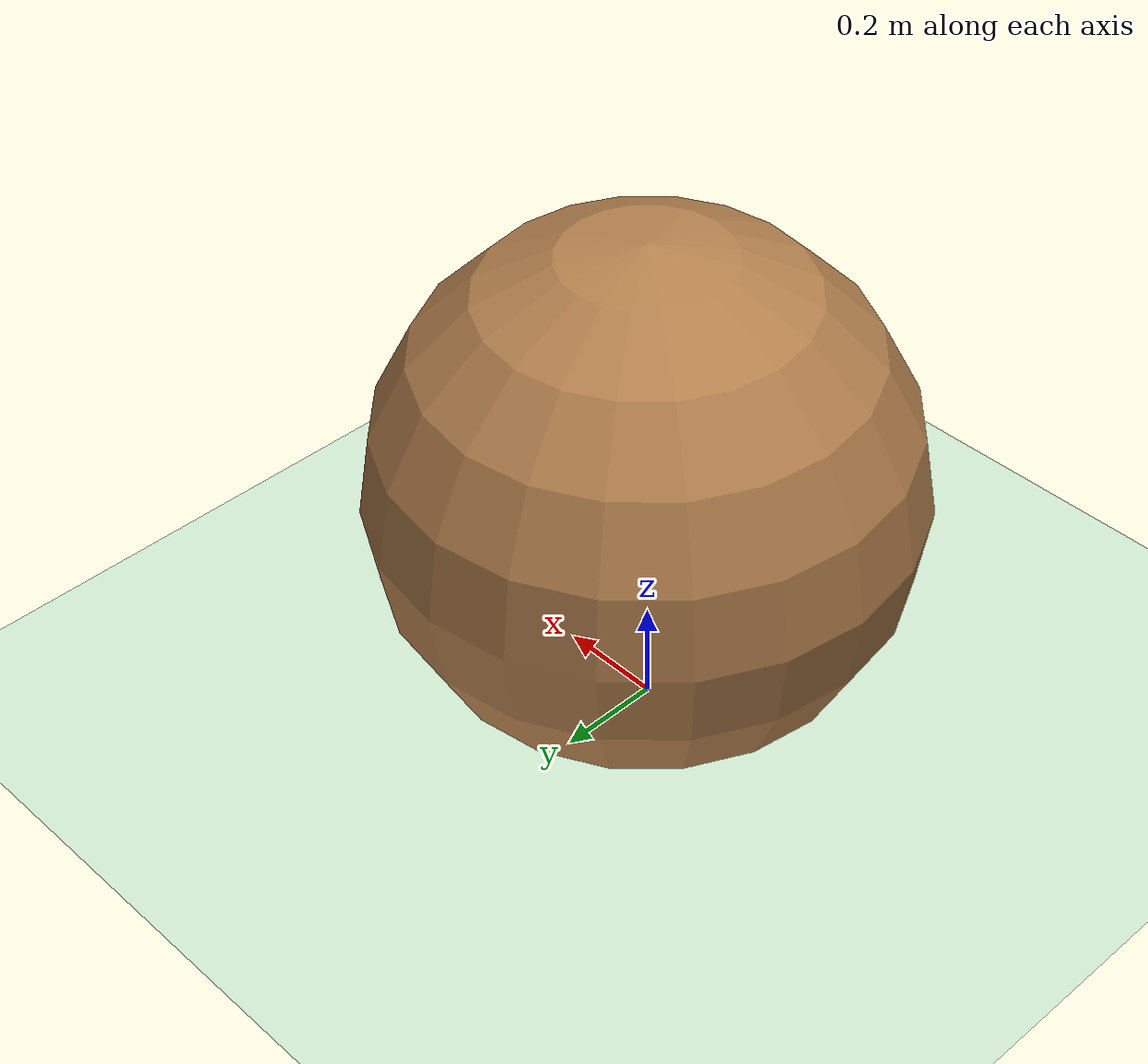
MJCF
<mujoco model="planar point mass">
  <asset>
    <texture name="grid" type="2d" builtin="checker" rgb1=".1 .2 .3" rgb2=".2 .3 .4" width="300" height="300" mark="edge" markrgb=".2 .3 .4"/>
    <material name="grid" texture="grid" texrepeat="1 1" texuniform="true" reflectance=".2"/>
    <material name="self" rgba=".7 .5 .3 1"/>
    <material name="self_default" rgba=".7 .5 .3 1"/>
    <material name="self_highlight" rgba="0 .5 .3 1"/>
    <material name="effector" rgba=".7 .4 .2 1"/>
    <material name="effector_default" rgba=".7 .4 .2 1"/>
    <material name="effector_highlight" rgba="0 .5 .3 1"/>
    <material name="decoration" rgba=".3 .5 .7 1"/>
    <material name="eye" rgba="0 .2 1 1"/>
    <material name="target" rgba=".6 .3 .3 1"/>
    <material name="target_default" rgba=".6 .3 .3 1"/>
    <material name="target_highlight" rgba=".6 .3 .3 .4"/>
    <material name="site" rgba=".5 .5 .5 .3"/>
  </asset>

  <option timestep="0.02">
  </option>

  <default>
    <joint type="hinge" axis="0 0 1" limited="true" range="-40 40" damping=".1"/>
    <motor gear="10" ctrlrange="-1 1" ctrllimited="true"/>
    <geom  solref="0.3 0.05"/>
  </default>

  <worldbody>
    <camera name="fixed" pos="0 0 .75" quat="1 0 0 0"/>
    <light directional="true" cutoff="100" exponent="1" diffuse="1 1 1" specular=".1 .1 .1" pos="0 0 1.3" dir="-0 0 -1.3" />
    <geom name='floor' pos='0 0 0' size='40 40 40' type='plane' conaffinity='1' rgba='0.8 0.9 0.8 1' condim='3' />

    <body name="torso" pos="0 0 .5">
      <joint name="root_x" type="slide"  pos="0 0 0" axis="1 0 0" />
      <joint name="root_y" type="slide"  pos="0 0 0" axis="0 1 0" />
      <joint axis="0 0 1" limited="false" name="rot" pos="0 0 0" type="hinge"/>
      <geom name="pointmass" type="sphere" size="0.5" material="self" mass=".3"/>
    </body>

  </worldbody>

  <tendon>
    <fixed name="t1">
      <joint joint="root_x" coef="1"/>
      <joint joint="root_y" coef="0"/>
    </fixed>
    <fixed name="t2">
      <joint joint="root_x" coef="0"/>
      <joint joint="root_y" coef="1"/>
    </fixed>
  </tendon>

  <actuator>
    <motor name="t1" tendon="t1"/>
    <motor name="t2" tendon="t2"/>
  </actuator>
</mujoco>
